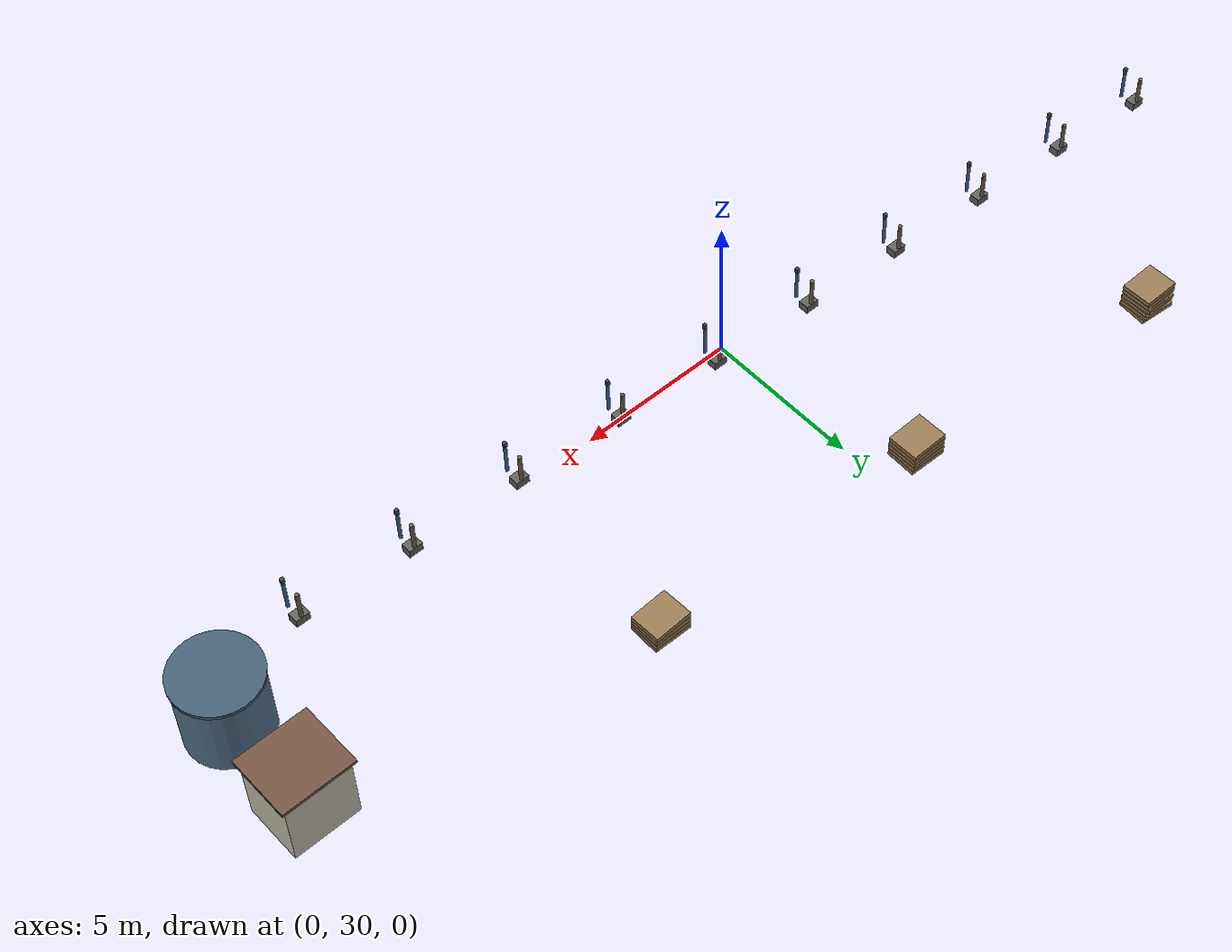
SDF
<sdf version="1.9">
 <world name="orchard_10x41">
  <model name="headland_N">
   <static>true</static>
   <link name="link">
    <visual name="markerpost_1">
     <pose>-15.750 31.800 1.055 0.0000 0.0000 0.0000</pose>
     <geometry><cylinder><radius>0.0600</radius><length>1.1500</length></cylinder></geometry>
     <material>
      <ambient>0.400 0.340 0.260 1</ambient>
      <diffuse>0.440 0.374 0.286 1</diffuse>
      <specular>0.120 0.102 0.078 1</specular>
     </material>
     <plugin filename="gz-sim-label-system" name="gz::sim::systems::Label"><label>60</label></plugin>
    </visual>
    <visual name="reflector_2">
     <pose>-15.750 31.800 1.500 0.0000 0.0000 0.0000</pose>
     <geometry><box><size>0.1400 0.0200 0.2000</size></box></geometry>
     <material>
      <ambient>0.850 0.720 0.180 1</ambient>
      <diffuse>0.935 0.792 0.198 1</diffuse>
      <specular>0.255 0.216 0.054 1</specular>
     </material>
     <plugin filename="gz-sim-label-system" name="gz::sim::systems::Label"><label>60</label></plugin>
    </visual>
    <visual name="markerpost_3">
     <pose>-12.250 31.800 1.471 0.0000 0.0000 0.0000</pose>
     <geometry><cylinder><radius>0.0600</radius><length>1.1500</length></cylinder></geometry>
     <material>
      <ambient>0.400 0.340 0.260 1</ambient>
      <diffuse>0.440 0.374 0.286 1</diffuse>
      <specular>0.120 0.102 0.078 1</specular>
     </material>
     <plugin filename="gz-sim-label-system" name="gz::sim::systems::Label"><label>60</label></plugin>
    </visual>
    <visual name="reflector_4">
     <pose>-12.250 31.800 1.916 0.0000 0.0000 0.0000</pose>
     <geometry><box><size>0.1400 0.0200 0.2000</size></box></geometry>
     <material>
      <ambient>0.850 0.720 0.180 1</ambient>
      <diffuse>0.935 0.792 0.198 1</diffuse>
      <specular>0.255 0.216 0.054 1</specular>
     </material>
     <plugin filename="gz-sim-label-system" name="gz::sim::systems::Label"><label>60</label></plugin>
    </visual>
    <visual name="markerpost_5">
     <pose>-8.750 31.800 1.827 0.0000 0.0000 0.0000</pose>
     <geometry><cylinder><radius>0.0600</radius><length>1.1500</length></cylinder></geometry>
     <material>
      <ambient>0.400 0.340 0.260 1</ambient>
      <diffuse>0.440 0.374 0.286 1</diffuse>
      <specular>0.120 0.102 0.078 1</specular>
     </material>
     <plugin filename="gz-sim-label-system" name="gz::sim::systems::Label"><label>60</label></plugin>
    </visual>
    <visual name="reflector_6">
     <pose>-8.750 31.800 2.272 0.0000 0.0000 0.0000</pose>
     <geometry><box><size>0.1400 0.0200 0.2000</size></box></geometry>
     <material>
      <ambient>0.850 0.720 0.180 1</ambient>
      <diffuse>0.935 0.792 0.198 1</diffuse>
      <specular>0.255 0.216 0.054 1</specular>
     </material>
     <plugin filename="gz-sim-label-system" name="gz::sim::systems::Label"><label>60</label></plugin>
    </visual>
    <visual name="markerpost_7">
     <pose>-5.250 31.800 2.182 0.0000 0.0000 0.0000</pose>
     <geometry><cylinder><radius>0.0600</radius><length>1.1500</length></cylinder></geometry>
     <material>
      <ambient>0.400 0.340 0.260 1</ambient>
      <diffuse>0.440 0.374 0.286 1</diffuse>
      <specular>0.120 0.102 0.078 1</specular>
     </material>
     <plugin filename="gz-sim-label-system" name="gz::sim::systems::Label"><label>60</label></plugin>
    </visual>
    <visual name="reflector_8">
     <pose>-5.250 31.800 2.627 0.0000 0.0000 0.0000</pose>
     <geometry><box><size>0.1400 0.0200 0.2000</size></box></geometry>
     <material>
      <ambient>0.850 0.720 0.180 1</ambient>
      <diffuse>0.935 0.792 0.198 1</diffuse>
      <specular>0.255 0.216 0.054 1</specular>
     </material>
     <plugin filename="gz-sim-label-system" name="gz::sim::systems::Label"><label>60</label></plugin>
    </visual>
    <visual name="markerpost_9">
     <pose>-1.750 31.800 2.508 0.0000 0.0000 0.0000</pose>
     <geometry><cylinder><radius>0.0600</radius><length>1.1500</length></cylinder></geometry>
     <material>
      <ambient>0.400 0.340 0.260 1</ambient>
      <diffuse>0.440 0.374 0.286 1</diffuse>
      <specular>0.120 0.102 0.078 1</specular>
     </material>
     <plugin filename="gz-sim-label-system" name="gz::sim::systems::Label"><label>60</label></plugin>
    </visual>
    <visual name="reflector_10">
     <pose>-1.750 31.800 2.953 0.0000 0.0000 0.0000</pose>
     <geometry><box><size>0.1400 0.0200 0.2000</size></box></geometry>
     <material>
      <ambient>0.850 0.720 0.180 1</ambient>
      <diffuse>0.935 0.792 0.198 1</diffuse>
      <specular>0.255 0.216 0.054 1</specular>
     </material>
     <plugin filename="gz-sim-label-system" name="gz::sim::systems::Label"><label>60</label></plugin>
    </visual>
    <visual name="markerpost_11">
     <pose>1.750 31.800 2.885 0.0000 0.0000 0.0000</pose>
     <geometry><cylinder><radius>0.0600</radius><length>1.1500</length></cylinder></geometry>
     <material>
      <ambient>0.400 0.340 0.260 1</ambient>
      <diffuse>0.440 0.374 0.286 1</diffuse>
      <specular>0.120 0.102 0.078 1</specular>
     </material>
     <plugin filename="gz-sim-label-system" name="gz::sim::systems::Label"><label>60</label></plugin>
    </visual>
    <visual name="reflector_12">
     <pose>1.750 31.800 3.330 0.0000 0.0000 0.0000</pose>
     <geometry><box><size>0.1400 0.0200 0.2000</size></box></geometry>
     <material>
      <ambient>0.850 0.720 0.180 1</ambient>
      <diffuse>0.935 0.792 0.198 1</diffuse>
      <specular>0.255 0.216 0.054 1</specular>
     </material>
     <plugin filename="gz-sim-label-system" name="gz::sim::systems::Label"><label>60</label></plugin>
    </visual>
    <visual name="markerpost_13">
     <pose>5.250 31.800 3.374 0.0000 0.0000 0.0000</pose>
     <geometry><cylinder><radius>0.0600</radius><length>1.1500</length></cylinder></geometry>
     <material>
      <ambient>0.400 0.340 0.260 1</ambient>
      <diffuse>0.440 0.374 0.286 1</diffuse>
      <specular>0.120 0.102 0.078 1</specular>
     </material>
     <plugin filename="gz-sim-label-system" name="gz::sim::systems::Label"><label>60</label></plugin>
    </visual>
    <visual name="reflector_14">
     <pose>5.250 31.800 3.819 0.0000 0.0000 0.0000</pose>
     <geometry><box><size>0.1400 0.0200 0.2000</size></box></geometry>
     <material>
      <ambient>0.850 0.720 0.180 1</ambient>
      <diffuse>0.935 0.792 0.198 1</diffuse>
      <specular>0.255 0.216 0.054 1</specular>
     </material>
     <plugin filename="gz-sim-label-system" name="gz::sim::systems::Label"><label>60</label></plugin>
    </visual>
    <visual name="markerpost_15">
     <pose>8.750 31.800 3.757 0.0000 0.0000 0.0000</pose>
     <geometry><cylinder><radius>0.0600</radius><length>1.1500</length></cylinder></geometry>
     <material>
      <ambient>0.400 0.340 0.260 1</ambient>
      <diffuse>0.440 0.374 0.286 1</diffuse>
      <specular>0.120 0.102 0.078 1</specular>
     </material>
     <plugin filename="gz-sim-label-system" name="gz::sim::systems::Label"><label>60</label></plugin>
    </visual>
    <visual name="reflector_16">
     <pose>8.750 31.800 4.202 0.0000 0.0000 0.0000</pose>
     <geometry><box><size>0.1400 0.0200 0.2000</size></box></geometry>
     <material>
      <ambient>0.850 0.720 0.180 1</ambient>
      <diffuse>0.935 0.792 0.198 1</diffuse>
      <specular>0.255 0.216 0.054 1</specular>
     </material>
     <plugin filename="gz-sim-label-system" name="gz::sim::systems::Label"><label>60</label></plugin>
    </visual>
    <visual name="markerpost_17">
     <pose>12.250 31.800 4.061 0.0000 0.0000 0.0000</pose>
     <geometry><cylinder><radius>0.0600</radius><length>1.1500</length></cylinder></geometry>
     <material>
      <ambient>0.400 0.340 0.260 1</ambient>
      <diffuse>0.440 0.374 0.286 1</diffuse>
      <specular>0.120 0.102 0.078 1</specular>
     </material>
     <plugin filename="gz-sim-label-system" name="gz::sim::systems::Label"><label>60</label></plugin>
    </visual>
    <visual name="reflector_18">
     <pose>12.250 31.800 4.506 0.0000 0.0000 0.0000</pose>
     <geometry><box><size>0.1400 0.0200 0.2000</size></box></geometry>
     <material>
      <ambient>0.850 0.720 0.180 1</ambient>
      <diffuse>0.935 0.792 0.198 1</diffuse>
      <specular>0.255 0.216 0.054 1</specular>
     </material>
     <plugin filename="gz-sim-label-system" name="gz::sim::systems::Label"><label>60</label></plugin>
    </visual>
    <visual name="markerpost_19">
     <pose>15.750 31.800 4.448 0.0000 0.0000 0.0000</pose>
     <geometry><cylinder><radius>0.0600</radius><length>1.1500</length></cylinder></geometry>
     <material>
      <ambient>0.400 0.340 0.260 1</ambient>
      <diffuse>0.440 0.374 0.286 1</diffuse>
      <specular>0.120 0.102 0.078 1</specular>
     </material>
     <plugin filename="gz-sim-label-system" name="gz::sim::systems::Label"><label>60</label></plugin>
    </visual>
    <visual name="reflector_20">
     <pose>15.750 31.800 4.893 0.0000 0.0000 0.0000</pose>
     <geometry><box><size>0.1400 0.0200 0.2000</size></box></geometry>
     <material>
      <ambient>0.850 0.720 0.180 1</ambient>
      <diffuse>0.935 0.792 0.198 1</diffuse>
      <specular>0.255 0.216 0.054 1</specular>
     </material>
     <plugin filename="gz-sim-label-system" name="gz::sim::systems::Label"><label>60</label></plugin>
    </visual>
    <visual name="standpipe_21">
     <pose>-15.750 31.200 1.006 0.0000 0.0000 0.0000</pose>
     <geometry><cylinder><radius>0.0500</radius><length>1.0500</length></cylinder></geometry>
     <material>
      <ambient>0.200 0.350 0.550 1</ambient>
      <diffuse>0.220 0.385 0.605 1</diffuse>
      <specular>0.060 0.105 0.165 1</specular>
     </material>
     <plugin filename="gz-sim-label-system" name="gz::sim::systems::Label"><label>67</label></plugin>
    </visual>
    <visual name="valve_22">
     <pose>-15.750 31.200 1.581 0.0000 0.0000 0.0000</pose>
     <geometry><box><size>0.1000 0.1000 0.1600</size></box></geometry>
     <material>
      <ambient>0.250 0.250 0.280 1</ambient>
      <diffuse>0.275 0.275 0.308 1</diffuse>
      <specular>0.075 0.075 0.084 1</specular>
     </material>
     <plugin filename="gz-sim-label-system" name="gz::sim::systems::Label"><label>67</label></plugin>
    </visual>
    <visual name="valvebox_23">
     <pose>-15.750 31.700 0.591 0.0000 0.0000 0.0000</pose>
     <geometry><box><size>0.4200 0.3200 0.2600</size></box></geometry>
     <material>
      <ambient>0.350 0.350 0.330 1</ambient>
      <diffuse>0.385 0.385 0.363 1</diffuse>
      <specular>0.105 0.105 0.099 1</specular>
     </material>
     <plugin filename="gz-sim-label-system" name="gz::sim::systems::Label"><label>67</label></plugin>
    </visual>
    <visual name="standpipe_24">
     <pose>-12.250 31.200 1.421 0.0000 0.0000 0.0000</pose>
     <geometry><cylinder><radius>0.0500</radius><length>1.0500</length></cylinder></geometry>
     <material>
      <ambient>0.200 0.350 0.550 1</ambient>
      <diffuse>0.220 0.385 0.605 1</diffuse>
      <specular>0.060 0.105 0.165 1</specular>
     </material>
     <plugin filename="gz-sim-label-system" name="gz::sim::systems::Label"><label>67</label></plugin>
    </visual>
    <visual name="valve_25">
     <pose>-12.250 31.200 1.996 0.0000 0.0000 0.0000</pose>
     <geometry><box><size>0.1000 0.1000 0.1600</size></box></geometry>
     <material>
      <ambient>0.250 0.250 0.280 1</ambient>
      <diffuse>0.275 0.275 0.308 1</diffuse>
      <specular>0.075 0.075 0.084 1</specular>
     </material>
     <plugin filename="gz-sim-label-system" name="gz::sim::systems::Label"><label>67</label></plugin>
    </visual>
    <visual name="valvebox_26">
     <pose>-12.250 31.700 1.006 0.0000 0.0000 0.0000</pose>
     <geometry><box><size>0.4200 0.3200 0.2600</size></box></geometry>
     <material>
      <ambient>0.350 0.350 0.330 1</ambient>
      <diffuse>0.385 0.385 0.363 1</diffuse>
      <specular>0.105 0.105 0.099 1</specular>
     </material>
     <plugin filename="gz-sim-label-system" name="gz::sim::systems::Label"><label>67</label></plugin>
    </visual>
    <visual name="standpipe_27">
     <pose>-8.750 31.200 1.778 0.0000 0.0000 0.0000</pose>
     <geometry><cylinder><radius>0.0500</radius><length>1.0500</length></cylinder></geometry>
     <material>
      <ambient>0.200 0.350 0.550 1</ambient>
      <diffuse>0.220 0.385 0.605 1</diffuse>
      <specular>0.060 0.105 0.165 1</specular>
     </material>
     <plugin filename="gz-sim-label-system" name="gz::sim::systems::Label"><label>67</label></plugin>
    </visual>
    <visual name="valve_28">
     <pose>-8.750 31.200 2.353 0.0000 0.0000 0.0000</pose>
     <geometry><box><size>0.1000 0.1000 0.1600</size></box></geometry>
     <material>
      <ambient>0.250 0.250 0.280 1</ambient>
      <diffuse>0.275 0.275 0.308 1</diffuse>
      <specular>0.075 0.075 0.084 1</specular>
     </material>
     <plugin filename="gz-sim-label-system" name="gz::sim::systems::Label"><label>67</label></plugin>
    </visual>
    <visual name="valvebox_29">
     <pose>-8.750 31.700 1.363 0.0000 0.0000 0.0000</pose>
     <geometry><box><size>0.4200 0.3200 0.2600</size></box></geometry>
     <material>
      <ambient>0.350 0.350 0.330 1</ambient>
      <diffuse>0.385 0.385 0.363 1</diffuse>
      <specular>0.105 0.105 0.099 1</specular>
     </material>
     <plugin filename="gz-sim-label-system" name="gz::sim::systems::Label"><label>67</label></plugin>
    </visual>
    <visual name="standpipe_30">
     <pose>-5.250 31.200 2.132 0.0000 0.0000 0.0000</pose>
     <geometry><cylinder><radius>0.0500</radius><length>1.0500</length></cylinder></geometry>
     <material>
      <ambient>0.200 0.350 0.550 1</ambient>
      <diffuse>0.220 0.385 0.605 1</diffuse>
      <specular>0.060 0.105 0.165 1</specular>
     </material>
     <plugin filename="gz-sim-label-system" name="gz::sim::systems::Label"><label>67</label></plugin>
    </visual>
    <visual name="valve_31">
     <pose>-5.250 31.200 2.707 0.0000 0.0000 0.0000</pose>
     <geometry><box><size>0.1000 0.1000 0.1600</size></box></geometry>
     <material>
      <ambient>0.250 0.250 0.280 1</ambient>
      <diffuse>0.275 0.275 0.308 1</diffuse>
      <specular>0.075 0.075 0.084 1</specular>
     </material>
     <plugin filename="gz-sim-label-system" name="gz::sim::systems::Label"><label>67</label></plugin>
    </visual>
    <visual name="valvebox_32">
     <pose>-5.250 31.700 1.717 0.0000 0.0000 0.0000</pose>
     <geometry><box><size>0.4200 0.3200 0.2600</size></box></geometry>
     <material>
      <ambient>0.350 0.350 0.330 1</ambient>
      <diffuse>0.385 0.385 0.363 1</diffuse>
      <specular>0.105 0.105 0.099 1</specular>
     </material>
     <plugin filename="gz-sim-label-system" name="gz::sim::systems::Label"><label>67</label></plugin>
    </visual>
    <visual name="standpipe_33">
     <pose>-1.750 31.200 2.458 0.0000 0.0000 0.0000</pose>
     <geometry><cylinder><radius>0.0500</radius><length>1.0500</length></cylinder></geometry>
     <material>
      <ambient>0.200 0.350 0.550 1</ambient>
      <diffuse>0.220 0.385 0.605 1</diffuse>
      <specular>0.060 0.105 0.165 1</specular>
     </material>
     <plugin filename="gz-sim-label-system" name="gz::sim::systems::Label"><label>67</label></plugin>
    </visual>
    <visual name="valve_34">
     <pose>-1.750 31.200 3.033 0.0000 0.0000 0.0000</pose>
     <geometry><box><size>0.1000 0.1000 0.1600</size></box></geometry>
     <material>
      <ambient>0.250 0.250 0.280 1</ambient>
      <diffuse>0.275 0.275 0.308 1</diffuse>
      <specular>0.075 0.075 0.084 1</specular>
     </material>
     <plugin filename="gz-sim-label-system" name="gz::sim::systems::Label"><label>67</label></plugin>
    </visual>
    <visual name="valvebox_35">
     <pose>-1.750 31.700 2.043 0.0000 0.0000 0.0000</pose>
     <geometry><box><size>0.4200 0.3200 0.2600</size></box></geometry>
     <material>
      <ambient>0.350 0.350 0.330 1</ambient>
      <diffuse>0.385 0.385 0.363 1</diffuse>
      <specular>0.105 0.105 0.099 1</specular>
     </material>
     <plugin filename="gz-sim-label-system" name="gz::sim::systems::Label"><label>67</label></plugin>
    </visual>
    <visual name="standpipe_36">
     <pose>1.750 31.200 2.835 0.0000 0.0000 0.0000</pose>
     <geometry><cylinder><radius>0.0500</radius><length>1.0500</length></cylinder></geometry>
     <material>
      <ambient>0.200 0.350 0.550 1</ambient>
      <diffuse>0.220 0.385 0.605 1</diffuse>
      <specular>0.060 0.105 0.165 1</specular>
     </material>
     <plugin filename="gz-sim-label-system" name="gz::sim::systems::Label"><label>67</label></plugin>
    </visual>
    <visual name="valve_37">
     <pose>1.750 31.200 3.410 0.0000 0.0000 0.0000</pose>
     <geometry><box><size>0.1000 0.1000 0.1600</size></box></geometry>
     <material>
      <ambient>0.250 0.250 0.280 1</ambient>
      <diffuse>0.275 0.275 0.308 1</diffuse>
      <specular>0.075 0.075 0.084 1</specular>
     </material>
     <plugin filename="gz-sim-label-system" name="gz::sim::systems::Label"><label>67</label></plugin>
    </visual>
    <visual name="valvebox_38">
     <pose>1.750 31.700 2.420 0.0000 0.0000 0.0000</pose>
     <geometry><box><size>0.4200 0.3200 0.2600</size></box></geometry>
     <material>
      <ambient>0.350 0.350 0.330 1</ambient>
      <diffuse>0.385 0.385 0.363 1</diffuse>
      <specular>0.105 0.105 0.099 1</specular>
     </material>
     <plugin filename="gz-sim-label-system" name="gz::sim::systems::Label"><label>67</label></plugin>
    </visual>
    <visual name="standpipe_39">
     <pose>5.250 31.200 3.324 0.0000 0.0000 0.0000</pose>
     <geometry><cylinder><radius>0.0500</radius><length>1.0500</length></cylinder></geometry>
     <material>
      <ambient>0.200 0.350 0.550 1</ambient>
      <diffuse>0.220 0.385 0.605 1</diffuse>
      <specular>0.060 0.105 0.165 1</specular>
     </material>
     <plugin filename="gz-sim-label-system" name="gz::sim::systems::Label"><label>67</label></plugin>
    </visual>
    <visual name="valve_40">
     <pose>5.250 31.200 3.899 0.0000 0.0000 0.0000</pose>
     <geometry><box><size>0.1000 0.1000 0.1600</size></box></geometry>
     <material>
      <ambient>0.250 0.250 0.280 1</ambient>
      <diffuse>0.275 0.275 0.308 1</diffuse>
      <specular>0.075 0.075 0.084 1</specular>
     </material>
     <plugin filename="gz-sim-label-system" name="gz::sim::systems::Label"><label>67</label></plugin>
    </visual>
    <visual name="valvebox_41">
     <pose>5.250 31.700 2.909 0.0000 0.0000 0.0000</pose>
     <geometry><box><size>0.4200 0.3200 0.2600</size></box></geometry>
     <material>
      <ambient>0.350 0.350 0.330 1</ambient>
      <diffuse>0.385 0.385 0.363 1</diffuse>
      <specular>0.105 0.105 0.099 1</specular>
     </material>
     <plugin filename="gz-sim-label-system" name="gz::sim::systems::Label"><label>67</label></plugin>
    </visual>
    <visual name="standpipe_42">
     <pose>8.750 31.200 3.707 0.0000 0.0000 0.0000</pose>
     <geometry><cylinder><radius>0.0500</radius><length>1.0500</length></cylinder></geometry>
     <material>
      <ambient>0.200 0.350 0.550 1</ambient>
      <diffuse>0.220 0.385 0.605 1</diffuse>
      <specular>0.060 0.105 0.165 1</specular>
     </material>
     <plugin filename="gz-sim-label-system" name="gz::sim::systems::Label"><label>67</label></plugin>
    </visual>
    <visual name="valve_43">
     <pose>8.750 31.200 4.282 0.0000 0.0000 0.0000</pose>
     <geometry><box><size>0.1000 0.1000 0.1600</size></box></geometry>
     <material>
      <ambient>0.250 0.250 0.280 1</ambient>
      <diffuse>0.275 0.275 0.308 1</diffuse>
      <specular>0.075 0.075 0.084 1</specular>
     </material>
     <plugin filename="gz-sim-label-system" name="gz::sim::systems::Label"><label>67</label></plugin>
    </visual>
    <visual name="valvebox_44">
     <pose>8.750 31.700 3.292 0.0000 0.0000 0.0000</pose>
     <geometry><box><size>0.4200 0.3200 0.2600</size></box></geometry>
     <material>
      <ambient>0.350 0.350 0.330 1</ambient>
      <diffuse>0.385 0.385 0.363 1</diffuse>
      <specular>0.105 0.105 0.099 1</specular>
     </material>
     <plugin filename="gz-sim-label-system" name="gz::sim::systems::Label"><label>67</label></plugin>
    </visual>
    <visual name="standpipe_45">
     <pose>12.250 31.200 4.011 0.0000 0.0000 0.0000</pose>
     <geometry><cylinder><radius>0.0500</radius><length>1.0500</length></cylinder></geometry>
     <material>
      <ambient>0.200 0.350 0.550 1</ambient>
      <diffuse>0.220 0.385 0.605 1</diffuse>
      <specular>0.060 0.105 0.165 1</specular>
     </material>
     <plugin filename="gz-sim-label-system" name="gz::sim::systems::Label"><label>67</label></plugin>
    </visual>
    <visual name="valve_46">
     <pose>12.250 31.200 4.586 0.0000 0.0000 0.0000</pose>
     <geometry><box><size>0.1000 0.1000 0.1600</size></box></geometry>
     <material>
      <ambient>0.250 0.250 0.280 1</ambient>
      <diffuse>0.275 0.275 0.308 1</diffuse>
      <specular>0.075 0.075 0.084 1</specular>
     </material>
     <plugin filename="gz-sim-label-system" name="gz::sim::systems::Label"><label>67</label></plugin>
    </visual>
    <visual name="valvebox_47">
     <pose>12.250 31.700 3.596 0.0000 0.0000 0.0000</pose>
     <geometry><box><size>0.4200 0.3200 0.2600</size></box></geometry>
     <material>
      <ambient>0.350 0.350 0.330 1</ambient>
      <diffuse>0.385 0.385 0.363 1</diffuse>
      <specular>0.105 0.105 0.099 1</specular>
     </material>
     <plugin filename="gz-sim-label-system" name="gz::sim::systems::Label"><label>67</label></plugin>
    </visual>
    <visual name="standpipe_48">
     <pose>15.750 31.200 4.398 0.0000 0.0000 0.0000</pose>
     <geometry><cylinder><radius>0.0500</radius><length>1.0500</length></cylinder></geometry>
     <material>
      <ambient>0.200 0.350 0.550 1</ambient>
      <diffuse>0.220 0.385 0.605 1</diffuse>
      <specular>0.060 0.105 0.165 1</specular>
     </material>
     <plugin filename="gz-sim-label-system" name="gz::sim::systems::Label"><label>67</label></plugin>
    </visual>
    <visual name="valve_49">
     <pose>15.750 31.200 4.973 0.0000 0.0000 0.0000</pose>
     <geometry><box><size>0.1000 0.1000 0.1600</size></box></geometry>
     <material>
      <ambient>0.250 0.250 0.280 1</ambient>
      <diffuse>0.275 0.275 0.308 1</diffuse>
      <specular>0.075 0.075 0.084 1</specular>
     </material>
     <plugin filename="gz-sim-label-system" name="gz::sim::systems::Label"><label>67</label></plugin>
    </visual>
    <visual name="valvebox_50">
     <pose>15.750 31.700 3.983 0.0000 0.0000 0.0000</pose>
     <geometry><box><size>0.4200 0.3200 0.2600</size></box></geometry>
     <material>
      <ambient>0.350 0.350 0.330 1</ambient>
      <diffuse>0.385 0.385 0.363 1</diffuse>
      <specular>0.105 0.105 0.099 1</specular>
     </material>
     <plugin filename="gz-sim-label-system" name="gz::sim::systems::Label"><label>67</label></plugin>
    </visual>
    <visual name="tank_51">
     <pose>18.950 33.300 5.373 0.0000 0.0000 0.0000</pose>
     <geometry><cylinder><radius>1.1500</radius><length>2.3000</length></cylinder></geometry>
     <material>
      <ambient>0.300 0.420 0.520 1</ambient>
      <diffuse>0.330 0.462 0.572 1</diffuse>
      <specular>0.090 0.126 0.156 1</specular>
     </material>
     <plugin filename="gz-sim-label-system" name="gz::sim::systems::Label"><label>60</label></plugin>
    </visual>
    <visual name="tanklid_52">
     <pose>18.950 33.300 6.573 0.0000 0.0000 0.0000</pose>
     <geometry><cylinder><radius>1.2000</radius><length>0.1000</length></cylinder></geometry>
     <material>
      <ambient>0.240 0.340 0.420 1</ambient>
      <diffuse>0.264 0.374 0.462 1</diffuse>
      <specular>0.072 0.102 0.126 1</specular>
     </material>
     <plugin filename="gz-sim-label-system" name="gz::sim::systems::Label"><label>60</label></plugin>
    </visual>
    <visual name="pumphouse_53">
     <pose>18.950 36.300 5.269 0.0000 0.0000 0.0000</pose>
     <geometry><box><size>1.9000 1.7000 2.1000</size></box></geometry>
     <material>
      <ambient>0.720 0.700 0.640 1</ambient>
      <diffuse>0.792 0.770 0.704 1</diffuse>
      <specular>0.216 0.210 0.192 1</specular>
     </material>
     <plugin filename="gz-sim-label-system" name="gz::sim::systems::Label"><label>60</label></plugin>
    </visual>
    <visual name="pumproof_54">
     <pose>18.950 36.300 6.379 0.0000 0.0000 0.0000</pose>
     <geometry><box><size>2.1000 1.9000 0.1000</size></box></geometry>
     <material>
      <ambient>0.420 0.300 0.240 1</ambient>
      <diffuse>0.462 0.330 0.264 1</diffuse>
      <specular>0.126 0.090 0.072 1</specular>
     </material>
     <plugin filename="gz-sim-label-system" name="gz::sim::systems::Label"><label>60</label></plugin>
    </visual>
    <visual name="pallet_55">
     <pose>-9.546 37.600 0.986 0.0000 0.0000 -0.0819</pose>
     <geometry><box><size>1.1500 0.9500 0.1400</size></box></geometry>
     <material>
      <ambient>0.550 0.440 0.300 1</ambient>
      <diffuse>0.605 0.484 0.330 1</diffuse>
      <specular>0.165 0.132 0.090 1</specular>
     </material>
     <plugin filename="gz-sim-label-system" name="gz::sim::systems::Label"><label>62</label></plugin>
    </visual>
    <visual name="pallet_56">
     <pose>-9.546 37.600 1.136 0.0000 0.0000 0.0465</pose>
     <geometry><box><size>1.1500 0.9500 0.1400</size></box></geometry>
     <material>
      <ambient>0.550 0.440 0.300 1</ambient>
      <diffuse>0.605 0.484 0.330 1</diffuse>
      <specular>0.165 0.132 0.090 1</specular>
     </material>
     <plugin filename="gz-sim-label-system" name="gz::sim::systems::Label"><label>62</label></plugin>
    </visual>
    <visual name="pallet_57">
     <pose>-9.546 37.600 1.286 0.0000 0.0000 -0.0327</pose>
     <geometry><box><size>1.1500 0.9500 0.1400</size></box></geometry>
     <material>
      <ambient>0.550 0.440 0.300 1</ambient>
      <diffuse>0.605 0.484 0.330 1</diffuse>
      <specular>0.165 0.132 0.090 1</specular>
     </material>
     <plugin filename="gz-sim-label-system" name="gz::sim::systems::Label"><label>62</label></plugin>
    </visual>
    <visual name="pallet_58">
     <pose>-9.546 37.600 1.436 0.0000 0.0000 0.0691</pose>
     <geometry><box><size>1.1500 0.9500 0.1400</size></box></geometry>
     <material>
      <ambient>0.550 0.440 0.300 1</ambient>
      <diffuse>0.605 0.484 0.330 1</diffuse>
      <specular>0.165 0.132 0.090 1</specular>
     </material>
     <plugin filename="gz-sim-label-system" name="gz::sim::systems::Label"><label>62</label></plugin>
    </visual>
    <visual name="pallet_59">
     <pose>-9.546 37.600 1.586 0.0000 0.0000 0.0090</pose>
     <geometry><box><size>1.1500 0.9500 0.1400</size></box></geometry>
     <material>
      <ambient>0.550 0.440 0.300 1</ambient>
      <diffuse>0.605 0.484 0.330 1</diffuse>
      <specular>0.165 0.132 0.090 1</specular>
     </material>
     <plugin filename="gz-sim-label-system" name="gz::sim::systems::Label"><label>62</label></plugin>
    </visual>
    <visual name="pallet_60">
     <pose>-9.546 37.600 1.736 0.0000 0.0000 0.0109</pose>
     <geometry><box><size>1.1500 0.9500 0.1400</size></box></geometry>
     <material>
      <ambient>0.550 0.440 0.300 1</ambient>
      <diffuse>0.605 0.484 0.330 1</diffuse>
      <specular>0.165 0.132 0.090 1</specular>
     </material>
     <plugin filename="gz-sim-label-system" name="gz::sim::systems::Label"><label>62</label></plugin>
    </visual>
    <visual name="pallet_61">
     <pose>-0.031 37.600 2.389 0.0000 0.0000 -0.0251</pose>
     <geometry><box><size>1.1500 0.9500 0.1400</size></box></geometry>
     <material>
      <ambient>0.550 0.440 0.300 1</ambient>
      <diffuse>0.605 0.484 0.330 1</diffuse>
      <specular>0.165 0.132 0.090 1</specular>
     </material>
     <plugin filename="gz-sim-label-system" name="gz::sim::systems::Label"><label>62</label></plugin>
    </visual>
    <visual name="pallet_62">
     <pose>-0.031 37.600 2.539 0.0000 0.0000 -0.0079</pose>
     <geometry><box><size>1.1500 0.9500 0.1400</size></box></geometry>
     <material>
      <ambient>0.550 0.440 0.300 1</ambient>
      <diffuse>0.605 0.484 0.330 1</diffuse>
      <specular>0.165 0.132 0.090 1</specular>
     </material>
     <plugin filename="gz-sim-label-system" name="gz::sim::systems::Label"><label>62</label></plugin>
    </visual>
    <visual name="pallet_63">
     <pose>-0.031 37.600 2.689 0.0000 0.0000 0.0244</pose>
     <geometry><box><size>1.1500 0.9500 0.1400</size></box></geometry>
     <material>
      <ambient>0.550 0.440 0.300 1</ambient>
      <diffuse>0.605 0.484 0.330 1</diffuse>
      <specular>0.165 0.132 0.090 1</specular>
     </material>
     <plugin filename="gz-sim-label-system" name="gz::sim::systems::Label"><label>62</label></plugin>
    </visual>
    <visual name="pallet_64">
     <pose>-0.031 37.600 2.839 0.0000 0.0000 0.0010</pose>
     <geometry><box><size>1.1500 0.9500 0.1400</size></box></geometry>
     <material>
      <ambient>0.550 0.440 0.300 1</ambient>
      <diffuse>0.605 0.484 0.330 1</diffuse>
      <specular>0.165 0.132 0.090 1</specular>
     </material>
     <plugin filename="gz-sim-label-system" name="gz::sim::systems::Label"><label>62</label></plugin>
    </visual>
    <visual name="pallet_65">
     <pose>-0.031 37.600 2.989 0.0000 0.0000 0.0142</pose>
     <geometry><box><size>1.1500 0.9500 0.1400</size></box></geometry>
     <material>
      <ambient>0.550 0.440 0.300 1</ambient>
      <diffuse>0.605 0.484 0.330 1</diffuse>
      <specular>0.165 0.132 0.090 1</specular>
     </material>
     <plugin filename="gz-sim-label-system" name="gz::sim::systems::Label"><label>62</label></plugin>
    </visual>
    <visual name="pallet_66">
     <pose>9.074 37.600 3.260 0.0000 0.0000 -0.0170</pose>
     <geometry><box><size>1.1500 0.9500 0.1400</size></box></geometry>
     <material>
      <ambient>0.550 0.440 0.300 1</ambient>
      <diffuse>0.605 0.484 0.330 1</diffuse>
      <specular>0.165 0.132 0.090 1</specular>
     </material>
     <plugin filename="gz-sim-label-system" name="gz::sim::systems::Label"><label>62</label></plugin>
    </visual>
    <visual name="pallet_67">
     <pose>9.074 37.600 3.410 0.0000 0.0000 -0.0126</pose>
     <geometry><box><size>1.1500 0.9500 0.1400</size></box></geometry>
     <material>
      <ambient>0.550 0.440 0.300 1</ambient>
      <diffuse>0.605 0.484 0.330 1</diffuse>
      <specular>0.165 0.132 0.090 1</specular>
     </material>
     <plugin filename="gz-sim-label-system" name="gz::sim::systems::Label"><label>62</label></plugin>
    </visual>
    <visual name="pallet_68">
     <pose>9.074 37.600 3.560 0.0000 0.0000 0.0180</pose>
     <geometry><box><size>1.1500 0.9500 0.1400</size></box></geometry>
     <material>
      <ambient>0.550 0.440 0.300 1</ambient>
      <diffuse>0.605 0.484 0.330 1</diffuse>
      <specular>0.165 0.132 0.090 1</specular>
     </material>
     <plugin filename="gz-sim-label-system" name="gz::sim::systems::Label"><label>62</label></plugin>
    </visual>
    <visual name="pallet_69">
     <pose>9.074 37.600 3.710 0.0000 0.0000 0.0423</pose>
     <geometry><box><size>1.1500 0.9500 0.1400</size></box></geometry>
     <material>
      <ambient>0.550 0.440 0.300 1</ambient>
      <diffuse>0.605 0.484 0.330 1</diffuse>
      <specular>0.165 0.132 0.090 1</specular>
     </material>
     <plugin filename="gz-sim-label-system" name="gz::sim::systems::Label"><label>62</label></plugin>
    </visual>
    <collision name="c0">
     <pose>-15.750 31.800 1.055 0.0000 0.0000 0.0000</pose>
     <geometry><cylinder><radius>0.0700</radius><length>1.1500</length></cylinder></geometry>
    </collision>
    <collision name="c1">
     <pose>-12.250 31.800 1.471 0.0000 0.0000 0.0000</pose>
     <geometry><cylinder><radius>0.0700</radius><length>1.1500</length></cylinder></geometry>
    </collision>
    <collision name="c2">
     <pose>-8.750 31.800 1.827 0.0000 0.0000 0.0000</pose>
     <geometry><cylinder><radius>0.0700</radius><length>1.1500</length></cylinder></geometry>
    </collision>
    <collision name="c3">
     <pose>-5.250 31.800 2.182 0.0000 0.0000 0.0000</pose>
     <geometry><cylinder><radius>0.0700</radius><length>1.1500</length></cylinder></geometry>
    </collision>
    <collision name="c4">
     <pose>-1.750 31.800 2.508 0.0000 0.0000 0.0000</pose>
     <geometry><cylinder><radius>0.0700</radius><length>1.1500</length></cylinder></geometry>
    </collision>
    <collision name="c5">
     <pose>1.750 31.800 2.885 0.0000 0.0000 0.0000</pose>
     <geometry><cylinder><radius>0.0700</radius><length>1.1500</length></cylinder></geometry>
    </collision>
    <collision name="c6">
     <pose>5.250 31.800 3.374 0.0000 0.0000 0.0000</pose>
     <geometry><cylinder><radius>0.0700</radius><length>1.1500</length></cylinder></geometry>
    </collision>
    <collision name="c7">
     <pose>8.750 31.800 3.757 0.0000 0.0000 0.0000</pose>
     <geometry><cylinder><radius>0.0700</radius><length>1.1500</length></cylinder></geometry>
    </collision>
    <collision name="c8">
     <pose>12.250 31.800 4.061 0.0000 0.0000 0.0000</pose>
     <geometry><cylinder><radius>0.0700</radius><length>1.1500</length></cylinder></geometry>
    </collision>
    <collision name="c9">
     <pose>15.750 31.800 4.448 0.0000 0.0000 0.0000</pose>
     <geometry><cylinder><radius>0.0700</radius><length>1.1500</length></cylinder></geometry>
    </collision>
    <collision name="c10">
     <pose>-15.750 31.200 1.006 0.0000 0.0000 0.0000</pose>
     <geometry><cylinder><radius>0.0600</radius><length>1.0500</length></cylinder></geometry>
    </collision>
    <collision name="c11">
     <pose>-12.250 31.200 1.421 0.0000 0.0000 0.0000</pose>
     <geometry><cylinder><radius>0.0600</radius><length>1.0500</length></cylinder></geometry>
    </collision>
    <collision name="c12">
     <pose>-8.750 31.200 1.778 0.0000 0.0000 0.0000</pose>
     <geometry><cylinder><radius>0.0600</radius><length>1.0500</length></cylinder></geometry>
    </collision>
    <collision name="c13">
     <pose>-5.250 31.200 2.132 0.0000 0.0000 0.0000</pose>
     <geometry><cylinder><radius>0.0600</radius><length>1.0500</length></cylinder></geometry>
    </collision>
    <collision name="c14">
     <pose>-1.750 31.200 2.458 0.0000 0.0000 0.0000</pose>
     <geometry><cylinder><radius>0.0600</radius><length>1.0500</length></cylinder></geometry>
    </collision>
    <collision name="c15">
     <pose>1.750 31.200 2.835 0.0000 0.0000 0.0000</pose>
     <geometry><cylinder><radius>0.0600</radius><length>1.0500</length></cylinder></geometry>
    </collision>
    <collision name="c16">
     <pose>5.250 31.200 3.324 0.0000 0.0000 0.0000</pose>
     <geometry><cylinder><radius>0.0600</radius><length>1.0500</length></cylinder></geometry>
    </collision>
    <collision name="c17">
     <pose>8.750 31.200 3.707 0.0000 0.0000 0.0000</pose>
     <geometry><cylinder><radius>0.0600</radius><length>1.0500</length></cylinder></geometry>
    </collision>
    <collision name="c18">
     <pose>12.250 31.200 4.011 0.0000 0.0000 0.0000</pose>
     <geometry><cylinder><radius>0.0600</radius><length>1.0500</length></cylinder></geometry>
    </collision>
    <collision name="c19">
     <pose>15.750 31.200 4.398 0.0000 0.0000 0.0000</pose>
     <geometry><cylinder><radius>0.0600</radius><length>1.0500</length></cylinder></geometry>
    </collision>
    <collision name="c20">
     <pose>18.950 33.300 5.373 0.0000 0.0000 0.0000</pose>
     <geometry><cylinder><radius>1.2000</radius><length>2.3000</length></cylinder></geometry>
    </collision>
    <collision name="c21">
     <pose>18.950 36.300 5.269 0.0000 0.0000 0.0000</pose>
     <geometry><box><size>1.9000 1.7000 2.1000</size></box></geometry>
    </collision>
    <collision name="c22">
     <pose>-9.546 37.600 1.356 0.0000 0.0000 0.0000</pose>
     <geometry><box><size>1.2000 1.0000 0.9000</size></box></geometry>
    </collision>
    <collision name="c23">
     <pose>-0.031 37.600 2.684 0.0000 0.0000 0.0000</pose>
     <geometry><box><size>1.2000 1.0000 0.7500</size></box></geometry>
    </collision>
    <collision name="c24">
     <pose>9.074 37.600 3.480 0.0000 0.0000 0.0000</pose>
     <geometry><box><size>1.2000 1.0000 0.6000</size></box></geometry>
    </collision>
   </link>
  </model>
 </world>
</sdf>
